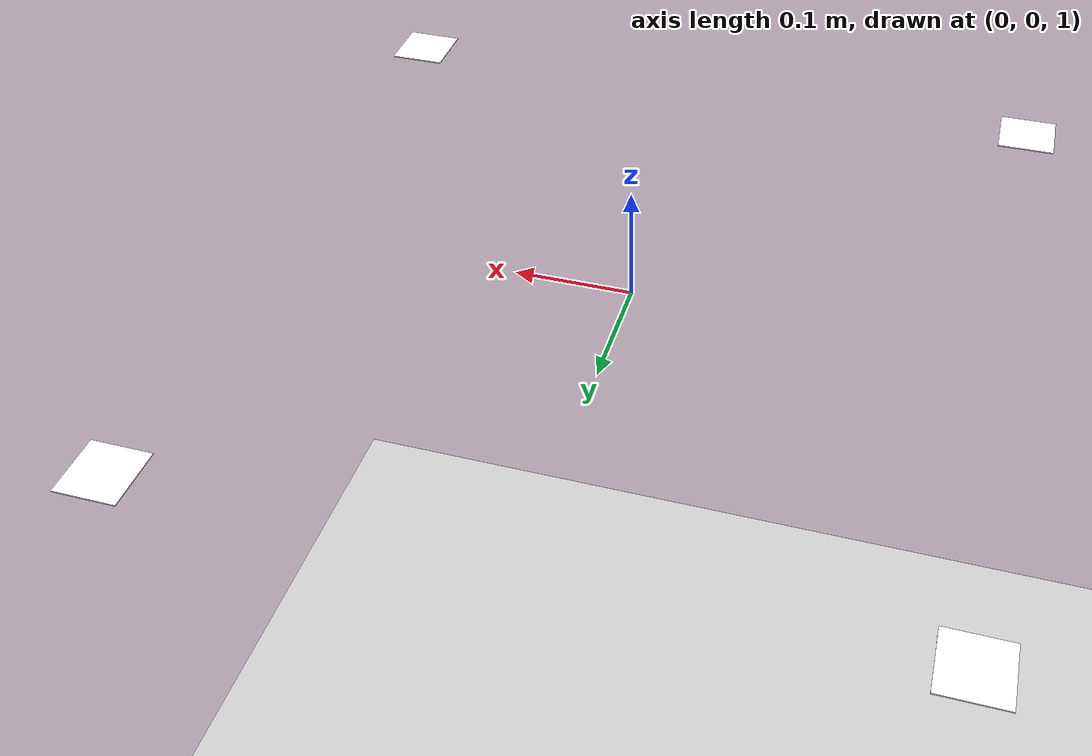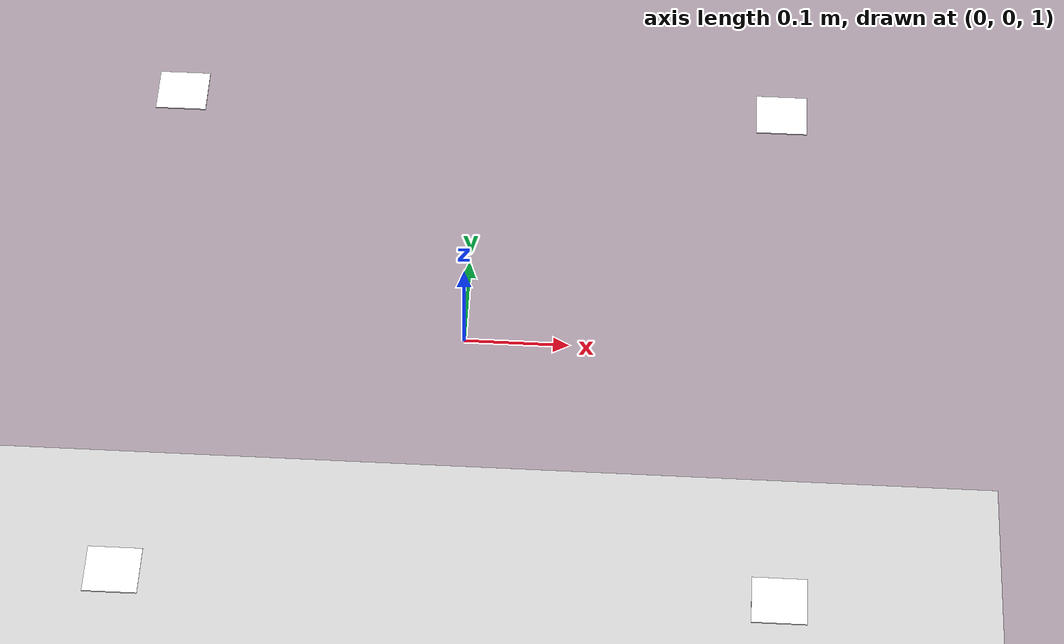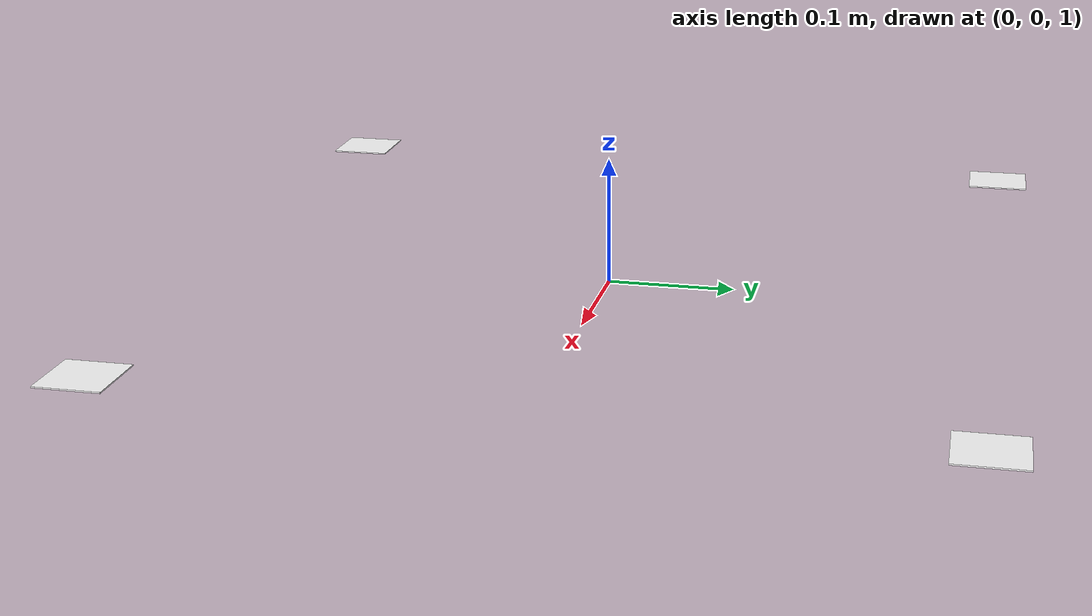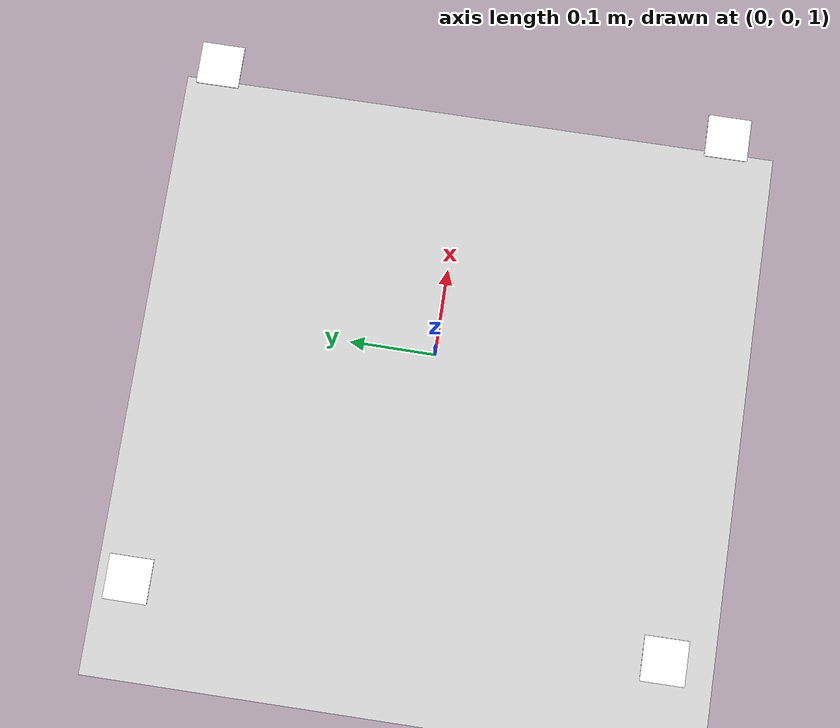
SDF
<sdf version="1.8">
 <world name="workspace_world">
  <physics name="1ms" type="ignored">
   <max_step_size>0.001</max_step_size>
   <real_time_factor>1.0</real_time_factor>
  </physics>
  <plugin filename="gz-sim-physics-system" name="gz::sim::systems::Physics"/>
  <plugin filename="gz-sim-scene-broadcaster-system" name="gz::sim::systems::SceneBroadcaster"/>
  <plugin filename="gz-sim-user-commands-system" name="gz::sim::systems::UserCommands"/>
  <plugin name="gz::sim::systems::Sensors" filename="gz-sim-sensors-system">
   <render_engine>ogre2</render_engine>
  </plugin>
  <light type="directional" name="sun">
   <cast_shadows>false</cast_shadows>
   <pose>0 0 10 0 0 0</pose>
   <diffuse>0.8 0.8 0.8 1</diffuse>
   <specular>0.2 0.2 0.2 1</specular>
   <attenuation>
    <range>1000</range>
    <constant>0.9</constant>
    <linear>0.01</linear>
    <quadratic>0.001</quadratic>
   </attenuation>
   <direction>-0.5 0.1 -0.9</direction>
  </light>
  <model name="ground_plane">
   <static>true</static>
   <link name="link">
    <collision name="collision"><geometry><plane><normal>0 0 1</normal></plane></geometry></collision>
    <visual name="visual">
     <geometry><plane><normal>0 0 1</normal><size>100 100</size></plane></geometry>
     <material>
      <ambient>0.8 0.8 0.8 1</ambient>
      <diffuse>0.8 0.8 0.8 1</diffuse>
      <specular>0.8 0.8 0.8 1</specular>
     </material>
    </visual>
   </link>
  </model>
  <include>
   <name>tag0</name>
   <static>true</static>
   <pose>-0.3 -0.3 1.015 0 0 0</pose>
   <uri>model://Apriltag41_12_00000</uri>
  </include>
  <include>
   <name>tag1</name>
   <static>true</static>
   <pose>-0.3 0.3 1.015 0 0 0</pose>
   <uri>model://Apriltag41_12_00001</uri>
  </include>
  <include>
   <name>tag2</name>
   <static>true</static>
   <pose>0.3 0.3 1.015 0 0 0</pose>
   <uri>model://Apriltag41_12_00002</uri>
  </include>
  <include>
   <name>tag3</name>
   <static>true</static>
   <pose>0.3 -0.3 1.015 0 0 0</pose>
   <uri>model://Apriltag41_12_00003</uri>
  </include>
 </world>
</sdf>

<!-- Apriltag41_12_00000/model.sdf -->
<sdf version="1.9">
  <model name="tag41_12_00000">
    <static>true</static>
    <link name="link">
      <visual name="visual">
        <geometry>
          <box>
            <size>0.05 0.05 0.001</size>
          </box>
        </geometry>
        <material>
          <ambient>1 1 1 1</ambient>
          <diffuse>1 1 1 1</diffuse>
          <specular>0.5 0.5 0.5 1</specular>
          <pbr>
            <metal>
              <albedo_map>materials/textures/tag41_12_00000.png</albedo_map>
              <roughness>0.5</roughness>
              <metalness>0.0</metalness>
            </metal>
          </pbr>
        </material>
      </visual>
      <collision name="collision">
        <geometry>
          <box>
            <size>0.2 0.2 0.001</size>
          </box>
        </geometry>
      </collision>
    </link>
  </model>
</sdf>

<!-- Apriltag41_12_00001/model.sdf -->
<sdf version="1.9">
  <model name="tag41_12_00001">
    <static>true</static>
    <link name="link">
      <visual name="visual">
        <geometry>
          <box>
            <size>0.05 0.05 0.001</size>
          </box>
        </geometry>
        <material>
          <ambient>1 1 1 1</ambient>
          <diffuse>1 1 1 1</diffuse>
          <specular>0.5 0.5 0.5 1</specular>
          <pbr>
            <metal>
              <albedo_map>materials/textures/tag41_12_00001.png</albedo_map>
              <roughness>0.5</roughness>
              <metalness>0.0</metalness>
            </metal>
          </pbr>
        </material>
      </visual>
      <collision name="collision">
        <geometry>
          <box>
            <size>0.2 0.2 0.001</size>
          </box>
        </geometry>
      </collision>
    </link>
  </model>
</sdf>

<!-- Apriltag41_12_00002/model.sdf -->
<sdf version="1.9">
  <model name="tag41_12_00002">
    <static>true</static>
    <link name="link">
      <visual name="visual">
        <geometry>
          <box>
            <size>0.05 0.05 0.001</size>
          </box>
        </geometry>
        <material>
          <ambient>1 1 1 1</ambient>
          <diffuse>1 1 1 1</diffuse>
          <specular>0.5 0.5 0.5 1</specular>
          <pbr>
            <metal>
              <albedo_map>materials/textures/tag41_12_00002.png</albedo_map>
              <roughness>0.5</roughness>
              <metalness>0.0</metalness>
            </metal>
          </pbr>
        </material>
      </visual>
      <collision name="collision">
        <geometry>
          <box>
            <size>0.2 0.2 0.001</size>
          </box>
        </geometry>
      </collision>
    </link>
  </model>
</sdf>

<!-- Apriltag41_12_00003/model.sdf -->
<sdf version="1.9">
  <model name="tag41_12_00003">
    <static>true</static>
    <link name="link">
      <visual name="visual">
        <geometry>
          <box>
            <size>0.05 0.05 0.001</size>
          </box>
        </geometry>
        <material>
          <ambient>1 1 1 1</ambient>
          <diffuse>1 1 1 1</diffuse>
          <specular>0.5 0.5 0.5 1</specular>
          <pbr>
            <metal>
              <albedo_map>materials/textures/tag41_12_00003.png</albedo_map>
              <roughness>0.5</roughness>
              <metalness>0.0</metalness>
            </metal>
          </pbr>
        </material>
      </visual>
      <collision name="collision">
        <geometry>
          <box>
            <size>0.2 0.2 0.001</size>
          </box>
        </geometry>
      </collision>
    </link>
  </model>
</sdf>
